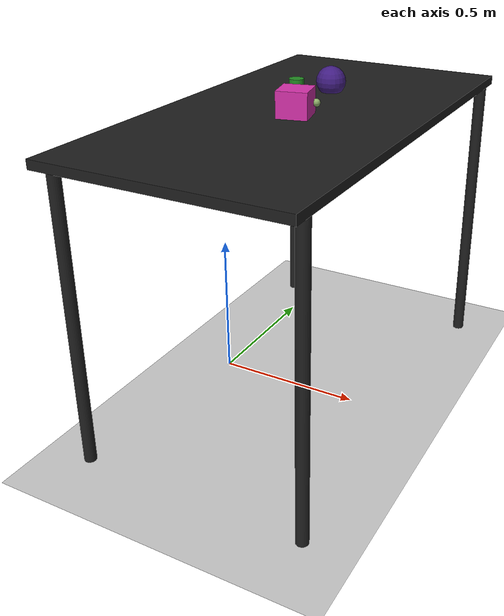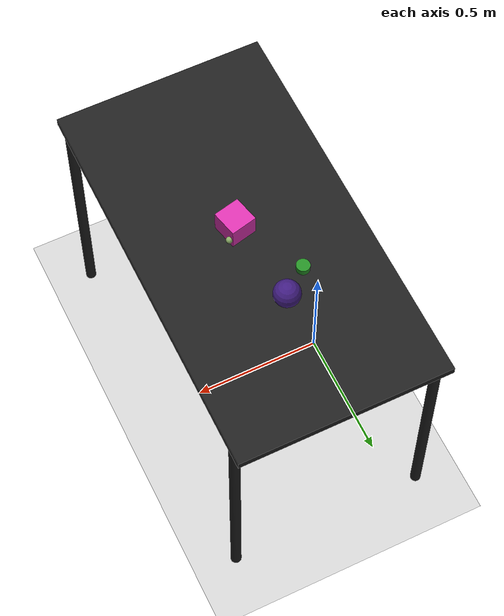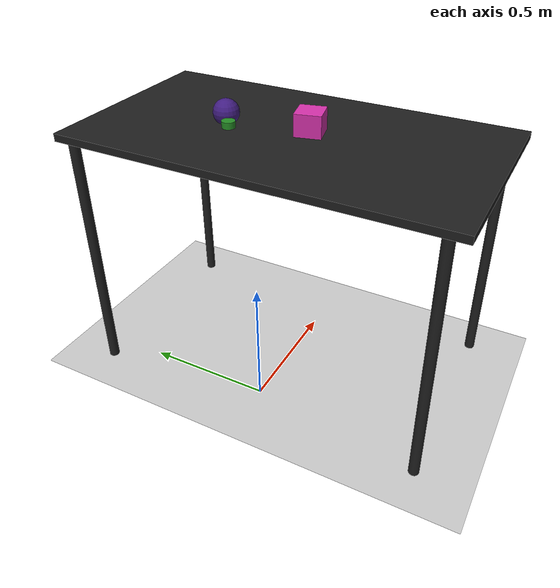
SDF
<?xml version="1.0" ?>
<sdf version="1.6">
  <world name="arm_world">
    <plugin filename="gz-sim-physics-system" name="gz::sim::systems::Physics">
      <engine>
        <filename>libgz-physics-bullet-featherstone-plugin.so</filename>
      </engine>
    </plugin>
    <plugin filename="gz-sim-user-commands-system" name="gz::sim::systems::UserCommands"/>
    <plugin filename="gz-sim-scene-broadcaster-system" name="gz::sim::systems::SceneBroadcaster"/>
    <plugin filename="gz-sim-sensors-system" name="gz::sim::systems::Sensors">
      <render_engine>ogre2</render_engine>
    </plugin>
    <gravity>0.0 0.0 -9.8</gravity>
    <scene>
      <shadows>false</shadows>
    </scene>
    <gui>
      <camera name="user_camera">
        <pose>0.75 -0.75 1.4 0 0.29 2.21</pose>
      </camera>
    </gui>
    <include>
      <uri>https://fuel.gazebosim.org/1.0/OpenRobotics/models/Sun</uri>
    </include>
    <model name="table">
      <static>true</static>
      <include>
        <uri>model://table</uri>
      </include>
      <pose>0.29 0 0 0 0 1.5708</pose>
    </model>
    <model name="ground_plane">
      <static>true</static>
      <link name="link">
        <collision name="collision">
          <geometry>
            <plane>
              <normal>0 0 1</normal>
            </plane>
          </geometry>
          <surface>
            <friction>
              <ode>
                <mu>1.0</mu>
                <mu2>1.0</mu2>
              </ode>
            </friction>
          </surface>
        </collision>
        <visual name="visual">
          <geometry>
            <plane>
              <normal>0 0 1</normal>
              <size>100 100</size>
            </plane>
          </geometry>
          <material>
            <ambient>0.8 0.8 0.8 1</ambient>
            <diffuse>0.8 0.8 0.8 1</diffuse>
            <specular>0.8 0.8 0.8 1</specular>
          </material>
        </visual>
      </link>
    </model>
    <model name="sphere_s_0">
      <pose>0.359 -0.006 1.05 0 0 5.04</pose>
      <link name="sphere_s_0_link">
        <inertial>
          <mass>0.05</mass>
          <inertia>
            <ixx>2.04e-7</ixx>
            <iyy>2.04e-7</iyy>
            <izz>3.9e-8</izz>
            <ixy>0</ixy>
            <ixz>0</ixz>
            <iyz>0</iyz>
          </inertia>
        </inertial>
        <collision name="sphere_s_0_collision">
          <geometry>
            <sphere>
              <radius>0.0125</radius>
            </sphere>
          </geometry>
          <surface>
            <friction>
              <ode>
                <mu>0.8</mu>
                <mu2>0.8</mu2>
                <fdir1>0 0 1</fdir1>
                <slip1>0.001</slip1>
                <slip2>0.001</slip2>
              </ode>
              <torsional>
                <coefficient>0.1</coefficient>
                <surface_radius>0.015</surface_radius>
                <use_patch_radius>true</use_patch_radius>
              </torsional>
            </friction>
            <contact>
              <ode>
                <kp>1e5</kp>
                <kd>10</kd>
                <max_vel>0.1</max_vel>
                <min_depth>0.001</min_depth>
                <soft_cfm>0.01</soft_cfm>
                <soft_erp>0.2</soft_erp>
              </ode>
            </contact>
            <bounce>
              <restitution_coefficient>0.2</restitution_coefficient>
              <threshold>0.01</threshold>
            </bounce>
          </surface>
        </collision>
        <visual name="sphere_s_0_visual">
          <geometry>
            <sphere>
              <radius>0.0125</radius>
            </sphere>
          </geometry>
          <material>
            <ambient>0.54 0.67 0.4 1</ambient>
            <diffuse>0.54 0.67 0.4 1</diffuse>
          </material>
        </visual>
        <velocity_decay>
          <linear>1</linear>
          <angular>1</angular>
        </velocity_decay>
      </link>
    </model>
    <model name="cube_l_1">
      <pose>0.313 -0.056 1.05 0 0 1.8</pose>
      <link name="cube_l_1_link">
        <inertial>
          <mass>0.05</mass>
          <inertia>
            <ixx>2.04e-7</ixx>
            <iyy>2.04e-7</iyy>
            <izz>3.9e-8</izz>
            <ixy>0</ixy>
            <ixz>0</ixz>
            <iyz>0</iyz>
          </inertia>
        </inertial>
        <collision name="cube_l_1_collision">
          <geometry>
            <box>
              <size>0.1 0.1 0.1</size>
            </box>
          </geometry>
          <surface>
            <friction>
              <ode>
                <mu>0.8</mu>
                <mu2>0.8</mu2>
                <fdir1>0 0 1</fdir1>
                <slip1>0.001</slip1>
                <slip2>0.001</slip2>
              </ode>
              <torsional>
                <coefficient>0.1</coefficient>
                <surface_radius>0.015</surface_radius>
                <use_patch_radius>true</use_patch_radius>
              </torsional>
            </friction>
            <contact>
              <ode>
                <kp>1e5</kp>
                <kd>10</kd>
                <max_vel>0.1</max_vel>
                <min_depth>0.001</min_depth>
                <soft_cfm>0.01</soft_cfm>
                <soft_erp>0.2</soft_erp>
              </ode>
            </contact>
            <bounce>
              <restitution_coefficient>0.2</restitution_coefficient>
              <threshold>0.01</threshold>
            </bounce>
          </surface>
        </collision>
        <visual name="cube_l_1_visual">
          <geometry>
            <box>
              <size>0.1 0.1 0.1</size>
            </box>
          </geometry>
          <material>
            <ambient>0.84 0.19 0.67 1</ambient>
            <diffuse>0.84 0.19 0.67 1</diffuse>
          </material>
        </visual>
        <velocity_decay>
          <linear>1</linear>
          <angular>1</angular>
        </velocity_decay>
      </link>
    </model>
    <model name="sphere_l_2">
      <pose>0.274 0.268 1.05 0 0 5.46</pose>
      <link name="sphere_l_2_link">
        <inertial>
          <mass>0.05</mass>
          <inertia>
            <ixx>2.04e-7</ixx>
            <iyy>2.04e-7</iyy>
            <izz>3.9e-8</izz>
            <ixy>0</ixy>
            <ixz>0</ixz>
            <iyz>0</iyz>
          </inertia>
        </inertial>
        <collision name="sphere_l_2_collision">
          <geometry>
            <sphere>
              <radius>0.05</radius>
            </sphere>
          </geometry>
          <surface>
            <friction>
              <ode>
                <mu>0.8</mu>
                <mu2>0.8</mu2>
                <fdir1>0 0 1</fdir1>
                <slip1>0.001</slip1>
                <slip2>0.001</slip2>
              </ode>
              <torsional>
                <coefficient>0.1</coefficient>
                <surface_radius>0.015</surface_radius>
                <use_patch_radius>true</use_patch_radius>
              </torsional>
            </friction>
            <contact>
              <ode>
                <kp>1e5</kp>
                <kd>10</kd>
                <max_vel>0.1</max_vel>
                <min_depth>0.001</min_depth>
                <soft_cfm>0.01</soft_cfm>
                <soft_erp>0.2</soft_erp>
              </ode>
            </contact>
            <bounce>
              <restitution_coefficient>0.2</restitution_coefficient>
              <threshold>0.01</threshold>
            </bounce>
          </surface>
        </collision>
        <visual name="sphere_l_2_visual">
          <geometry>
            <sphere>
              <radius>0.05</radius>
            </sphere>
          </geometry>
          <material>
            <ambient>0.25 0.11 0.5 1</ambient>
            <diffuse>0.25 0.11 0.5 1</diffuse>
          </material>
        </visual>
        <velocity_decay>
          <linear>1</linear>
          <angular>1</angular>
        </velocity_decay>
      </link>
    </model>
    <model name="cylinder_m_3">
      <pose>0.179 0.199 1.05 0 0 2.0</pose>
      <link name="cylinder_m_3_link">
        <inertial>
          <mass>0.05</mass>
          <inertia>
            <ixx>2.04e-7</ixx>
            <iyy>2.04e-7</iyy>
            <izz>3.9e-8</izz>
            <ixy>0</ixy>
            <ixz>0</ixz>
            <iyz>0</iyz>
          </inertia>
        </inertial>
        <collision name="cylinder_m_3_collision">
          <geometry>
            <cylinder>
              <radius>0.025</radius>
              <length>0.025</length>
            </cylinder>
          </geometry>
          <surface>
            <friction>
              <ode>
                <mu>0.8</mu>
                <mu2>0.8</mu2>
                <fdir1>0 0 1</fdir1>
                <slip1>0.001</slip1>
                <slip2>0.001</slip2>
              </ode>
              <torsional>
                <coefficient>0.1</coefficient>
                <surface_radius>0.015</surface_radius>
                <use_patch_radius>true</use_patch_radius>
              </torsional>
            </friction>
            <contact>
              <ode>
                <kp>1e5</kp>
                <kd>10</kd>
                <max_vel>0.1</max_vel>
                <min_depth>0.001</min_depth>
                <soft_cfm>0.01</soft_cfm>
                <soft_erp>0.2</soft_erp>
              </ode>
            </contact>
            <bounce>
              <restitution_coefficient>0.2</restitution_coefficient>
              <threshold>0.01</threshold>
            </bounce>
          </surface>
        </collision>
        <visual name="cylinder_m_3_visual">
          <geometry>
            <cylinder>
              <radius>0.025</radius>
              <length>0.025</length>
            </cylinder>
          </geometry>
          <material>
            <ambient>0.14 0.55 0.14 1</ambient>
            <diffuse>0.14 0.55 0.14 1</diffuse>
          </material>
        </visual>
        <velocity_decay>
          <linear>1</linear>
          <angular>1</angular>
        </velocity_decay>
      </link>
    </model>
    <model name="cylinder_m_4">
      <pose>0.333 -0.073 1.05 0 0 4.62</pose>
      <link name="cylinder_m_4_link">
        <inertial>
          <mass>0.05</mass>
          <inertia>
            <ixx>2.04e-7</ixx>
            <iyy>2.04e-7</iyy>
            <izz>3.9e-8</izz>
            <ixy>0</ixy>
            <ixz>0</ixz>
            <iyz>0</iyz>
          </inertia>
        </inertial>
        <collision name="cylinder_m_4_collision">
          <geometry>
            <cylinder>
              <radius>0.025</radius>
              <length>0.025</length>
            </cylinder>
          </geometry>
          <surface>
            <friction>
              <ode>
                <mu>0.8</mu>
                <mu2>0.8</mu2>
                <fdir1>0 0 1</fdir1>
                <slip1>0.001</slip1>
                <slip2>0.001</slip2>
              </ode>
              <torsional>
                <coefficient>0.1</coefficient>
                <surface_radius>0.015</surface_radius>
                <use_patch_radius>true</use_patch_radius>
              </torsional>
            </friction>
            <contact>
              <ode>
                <kp>1e5</kp>
                <kd>10</kd>
                <max_vel>0.1</max_vel>
                <min_depth>0.001</min_depth>
                <soft_cfm>0.01</soft_cfm>
                <soft_erp>0.2</soft_erp>
              </ode>
            </contact>
            <bounce>
              <restitution_coefficient>0.2</restitution_coefficient>
              <threshold>0.01</threshold>
            </bounce>
          </surface>
        </collision>
        <visual name="cylinder_m_4_visual">
          <geometry>
            <cylinder>
              <radius>0.025</radius>
              <length>0.025</length>
            </cylinder>
          </geometry>
          <material>
            <ambient>1.0 0.72 0.89 1</ambient>
            <diffuse>1.0 0.72 0.89 1</diffuse>
          </material>
        </visual>
        <velocity_decay>
          <linear>1</linear>
          <angular>1</angular>
        </velocity_decay>
      </link>
    </model>
  </world>
</sdf>

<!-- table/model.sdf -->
<sdf version="1.5">
  <model name="table">
    <static>true</static>
    <link name="link">
      <collision name="surface">
        <pose>0 0 1.0 0 0 0</pose>
        <geometry>
          <box>
            <size>1.5 0.8 0.03</size>
          </box>
        </geometry>
        <surface>
          <friction>
            <ode>
              <mu>0.6</mu>
              <mu2>0.6</mu2>
            </ode>
          </friction>
        </surface>
      </collision>
      <visual name="surface">
        <pose>0 0 1.0 0 0 0</pose>
        <geometry>
          <box>
            <size>1.5 0.8 0.03</size>
          </box>
        </geometry>
        <material>
          <script>
            <uri>file://media/materials/scripts/gazebo.material</uri>
            <name>Gazebo/Black</name>
          </script>
        </material>
      </visual>
      <collision name="front_left_leg">
        <pose>0.68 0.38 0.5 0 0 0</pose>
        <geometry>
          <cylinder>
            <radius>0.02</radius>
            <length>1.0</length>
          </cylinder>
        </geometry>
      </collision>
      <visual name="front_left_leg">
        <pose>0.68 0.38 0.5 0 0 0</pose>
        <geometry>
          <cylinder>
            <radius>0.02</radius>
            <length>1.0</length>
          </cylinder>
        </geometry>
        <material>
          <script>
            <uri>file://media/materials/scripts/gazebo.material</uri>
            <name>Gazebo/Black</name>
          </script>
        </material>
      </visual>
      <collision name="front_right_leg">
        <pose>0.68 -0.38 0.5 0 0 0</pose>
        <geometry>
          <cylinder>
            <radius>0.02</radius>
            <length>1.0</length>
          </cylinder>
        </geometry>
      </collision>
      <visual name="front_right_leg">
        <pose>0.68 -0.38 0.5 0 0 0</pose>
        <geometry>
          <cylinder>
            <radius>0.02</radius>
            <length>1.0</length>
          </cylinder>
        </geometry>
        <material>
          <script>
            <uri>file://media/materials/scripts/gazebo.material</uri>
            <name>Gazebo/Black</name>
          </script>
        </material>
      </visual>
      <collision name="back_right_leg">
        <pose>-0.68 -0.38 0.5 0 0 0</pose>
        <geometry>
          <cylinder>
            <radius>0.02</radius>
            <length>1.0</length>
          </cylinder>
        </geometry>
      </collision>
      <visual name="back_right_leg">
        <pose>-0.68 -0.38 0.5 0 0 0</pose>
        <geometry>
          <cylinder>
            <radius>0.02</radius>
            <length>1.0</length>
          </cylinder>
        </geometry>
        <material>
          <script>
            <uri>file://media/materials/scripts/gazebo.material</uri>
            <name>Gazebo/Black</name>
          </script>
        </material>
      </visual>
      <collision name="back_left_leg">
        <pose>-0.68 0.38 0.5 0 0 0</pose>
        <geometry>
          <cylinder>
            <radius>0.02</radius>
            <length>1.0</length>
          </cylinder>
        </geometry>
      </collision>
      <visual name="back_left_leg">
        <pose>-0.68 0.38 0.5 0 0 0</pose>
        <geometry>
          <cylinder>
            <radius>0.02</radius>
            <length>1.0</length>
          </cylinder>
        </geometry>
        <material>
          <script>
            <uri>file://media/materials/scripts/gazebo.material</uri>
            <name>Gazebo/Black</name>
          </script>
        </material>
      </visual>
    </link>
  </model>
</sdf>
